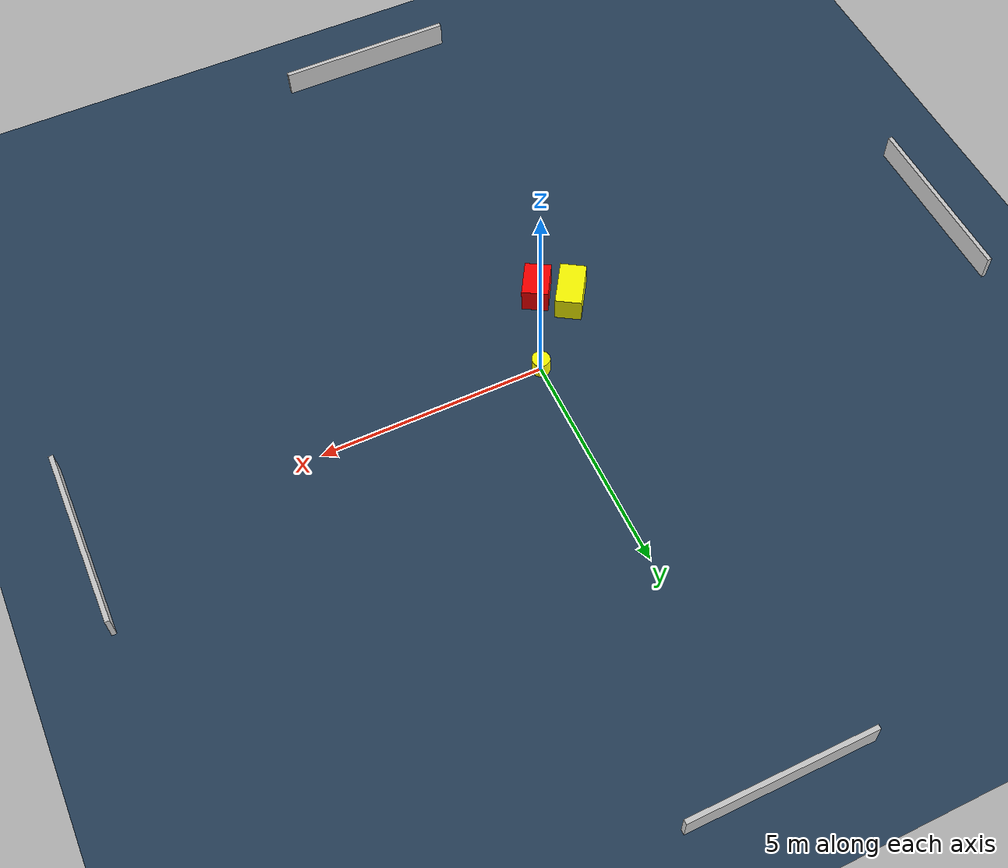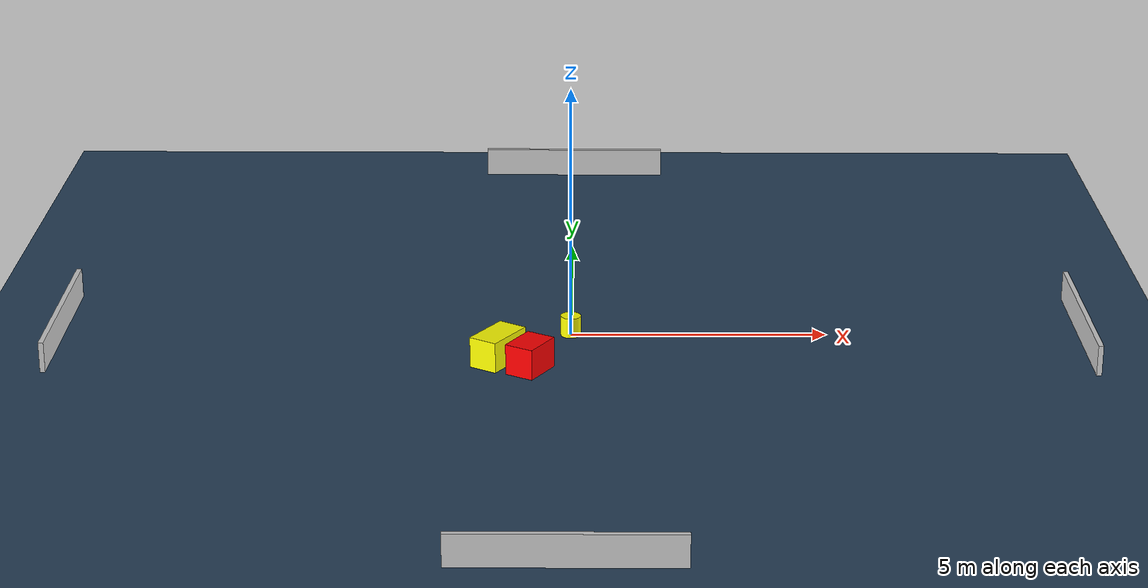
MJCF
<?xml version="1.0" ?>
<mujoco model="generated_environment">
  <option timestep="0.01" integrator="RK4" cone="elliptic"/>
  <default>
    <geom density="1"/>
  </default>
  <asset>
    <texture builtin="gradient" height="3072" name="skybox" rgb1="0.3 0.5 0.7" rgb2="0 0 0" type="skybox" width="512"/>
    <texture builtin="checker" height="300" name="groundplane" rgb1="0.2 0.3 0.4" rgb2="0.1 0.2 0.3" type="2d" width="300"/>
    <material name="groundplane" reflectance="0.2" texrepeat="5 5" texture="groundplane"/>
  </asset>
  <worldbody>
    <light dir="0 0 -1" directional="true" pos="0 0 1.5"/>
    <geom condim="3" friction="0.5 0.005 0.001" material="groundplane" name="floor" pos="0 0 0" size="0 0 0.05" type="plane"/>
    <body name="walls">
      <geom name="wall_1" condim="4" pos="-10.0 0.0 0.3" rgba="0.800000011920929 0.800000011920929 0.800000011920929 1.0" size="0.05 2.0 0.3" type="box"/>
      <geom name="wall_2" condim="4" pos="10.0 0.0 0.3" rgba="0.800000011920929 0.800000011920929 0.800000011920929 1.0" size="0.05 2.0 0.3" type="box"/>
      <geom name="wall_3" condim="4" pos="0.0 -10.0 0.3" rgba="0.800000011920929 0.800000011920929 0.800000011920929 1.0" size="2.0 0.05 0.3" type="box"/>
      <geom name="wall_4" condim="4" pos="0.0 10.0 0.3" rgba="0.800000011920929 0.800000011920929 0.800000011920929 1.0" size="2.0 0.05 0.3" type="box"/>
    </body>
    <body name="robot">
      <joint name="joint_x" type="slide" pos="0 0 0" axis="1 0 0"/>
      <joint name="joint_y" type="slide" pos="0 0 0" axis="0 1 0"/>
      <geom name="robot" type="cylinder" pos="0.0 0.0 0.2" size="0.2 0.2 0.0" mass="5.0" friction="1.0 0.005 0.0001" condim="4" rgba="1.0 1.0 0.0 1.0"/>
    </body>
    <body name="obstacle_1_movable">
      <geom name="obstacle_1_movable" condim="4" pos="-1.3856750695868458 -1.3896258282350031 0.3" euler="0 0 327.4486234737591" friction="0.0 0.005 0.001" rgba="1.0 1.0 0.0 1.0" size="0.2918838948367024 0.5129677001091582 0.3" type="box" mass="0.1"/>
      <joint type="free"/>
    </body>
    <body name="obstacle_2_static">
      <geom name="obstacle_2_static" condim="4" pos="-0.7619329514572815 -1.826894095565682 0.3" euler="0 0 149.31077670213415" friction="0.0 0.005 0.001" rgba="1.0 0.0 0.0 1.0" size="0.2933121714162918 0.4030388375037294 0.3" type="box"/>
    </body>
  </worldbody>
  <actuator>
    <motor name="actuator_x" joint="joint_x" gear="1" ctrlrange="-1 1"/>
    <motor name="actuator_y" joint="joint_y" gear="1" ctrlrange="-1 1"/>
  </actuator>
</mujoco>
